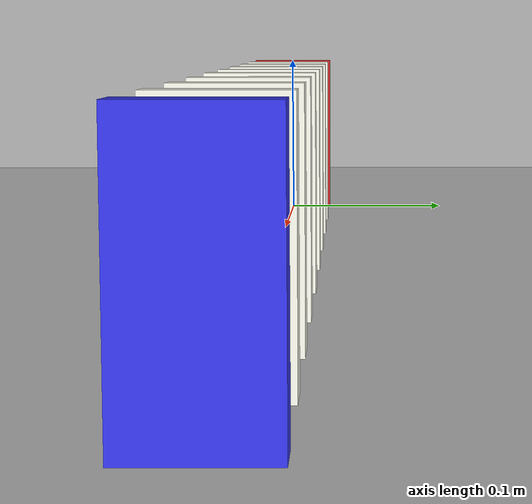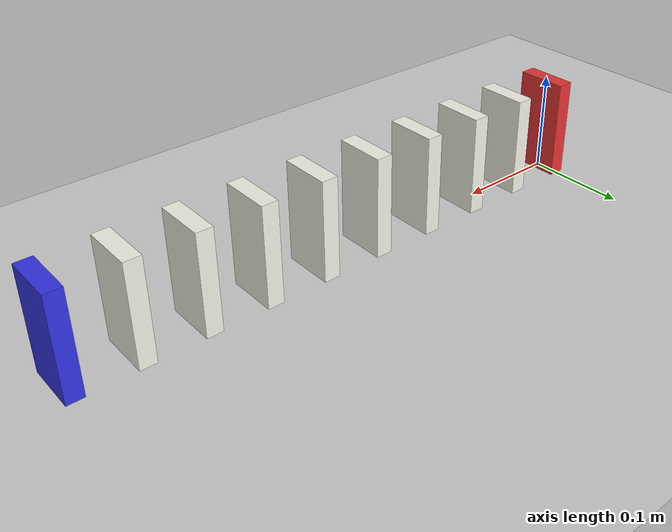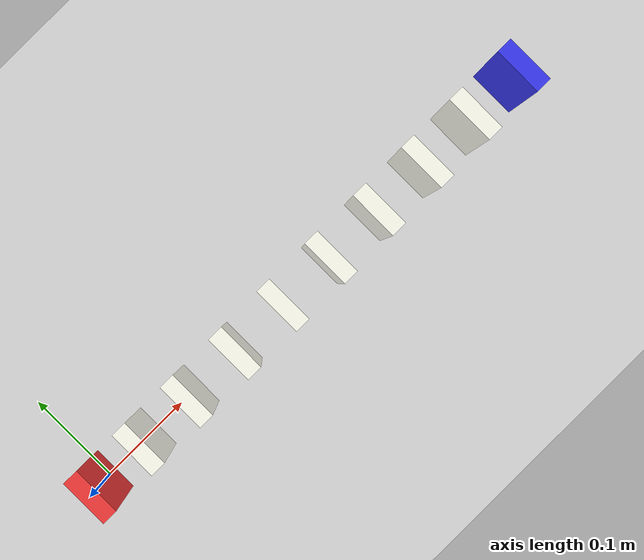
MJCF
<mujoco model="domino_chain">
  <option timestep="0.002" gravity="0 0 -9.81"/>
  <visual>
    <global offwidth="1280" offheight="720"/>
  </visual>
  <worldbody>
    <light name="sun" pos="0.3 -0.5 1.5" dir="0 0.3 -1" directional="true"/>
    <geom name="floor" type="plane" size="2 2 0.1" rgba="0.8 0.8 0.8 1" friction="1 0.005 0.0001"/>
    <body name="domino1" pos="0 0 0.05">
      <freejoint/>
      <geom name="domino1_geom" type="box" size="0.008 0.025 0.05" density="700" friction="0.5 0.005 0.0001" rgba="0.9 0.2 0.2 1"/>
    </body>
    <body name="domino2" pos="0.06 0 0.05">
      <freejoint/>
      <geom name="domino2_geom" type="box" size="0.008 0.025 0.05" density="700" friction="0.5 0.005 0.0001" rgba="0.95 0.95 0.9 1"/>
    </body>
    <body name="domino3" pos="0.12 0 0.05">
      <freejoint/>
      <geom name="domino3_geom" type="box" size="0.008 0.025 0.05" density="700" friction="0.5 0.005 0.0001" rgba="0.95 0.95 0.9 1"/>
    </body>
    <body name="domino4" pos="0.18 0 0.05">
      <freejoint/>
      <geom name="domino4_geom" type="box" size="0.008 0.025 0.05" density="700" friction="0.5 0.005 0.0001" rgba="0.95 0.95 0.9 1"/>
    </body>
    <body name="domino5" pos="0.24 0 0.05">
      <freejoint/>
      <geom name="domino5_geom" type="box" size="0.008 0.025 0.05" density="700" friction="0.5 0.005 0.0001" rgba="0.95 0.95 0.9 1"/>
    </body>
    <body name="domino6" pos="0.30 0 0.05">
      <freejoint/>
      <geom name="domino6_geom" type="box" size="0.008 0.025 0.05" density="700" friction="0.5 0.005 0.0001" rgba="0.95 0.95 0.9 1"/>
    </body>
    <body name="domino7" pos="0.36 0 0.05">
      <freejoint/>
      <geom name="domino7_geom" type="box" size="0.008 0.025 0.05" density="700" friction="0.5 0.005 0.0001" rgba="0.95 0.95 0.9 1"/>
    </body>
    <body name="domino8" pos="0.42 0 0.05">
      <freejoint/>
      <geom name="domino8_geom" type="box" size="0.008 0.025 0.05" density="700" friction="0.5 0.005 0.0001" rgba="0.95 0.95 0.9 1"/>
    </body>
    <body name="domino9" pos="0.48 0 0.05">
      <freejoint/>
      <geom name="domino9_geom" type="box" size="0.008 0.025 0.05" density="700" friction="0.5 0.005 0.0001" rgba="0.95 0.95 0.9 1"/>
    </body>
    <body name="domino10" pos="0.54 0 0.05">
      <freejoint/>
      <geom name="domino10_geom" type="box" size="0.008 0.025 0.05" density="700" friction="0.5 0.005 0.0001" rgba="0.2 0.2 0.9 1"/>
    </body>
  </worldbody>
  <keyframe>
    <key name="start" qpos="0 0 0.05 1 0 0 0  0.06 0 0.05 1 0 0 0  0.12 0 0.05 1 0 0 0  0.18 0 0.05 1 0 0 0  0.24 0 0.05 1 0 0 0  0.30 0 0.05 1 0 0 0  0.36 0 0.05 1 0 0 0  0.42 0 0.05 1 0 0 0  0.48 0 0.05 1 0 0 0  0.54 0 0.05 1 0 0 0" qvel="0.15 0 0.024 0 3 0  0 0 0 0 0 0  0 0 0 0 0 0  0 0 0 0 0 0  0 0 0 0 0 0  0 0 0 0 0 0  0 0 0 0 0 0  0 0 0 0 0 0  0 0 0 0 0 0  0 0 0 0 0 0"/>
  </keyframe>
</mujoco>
